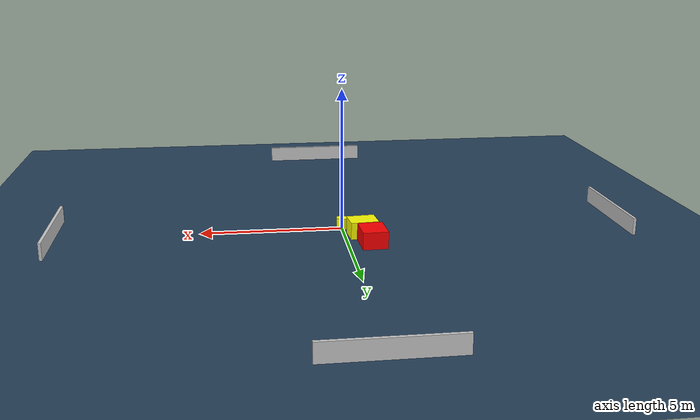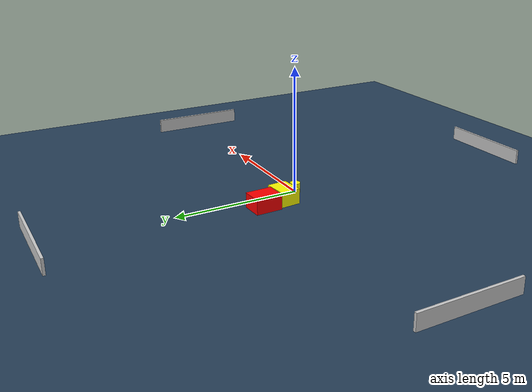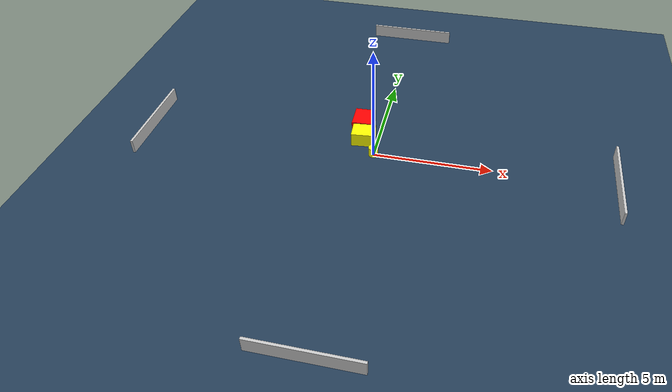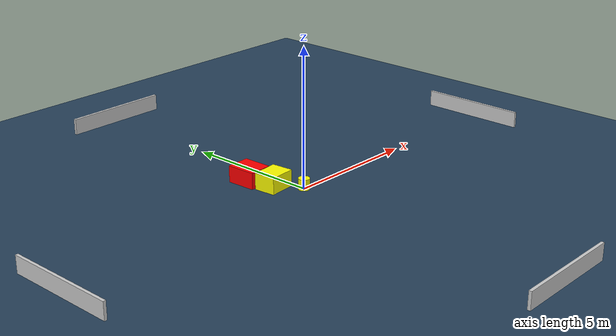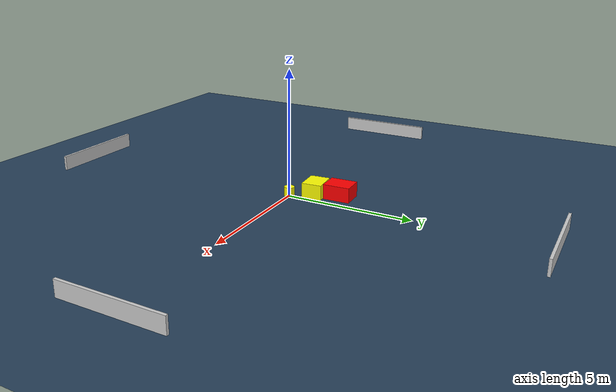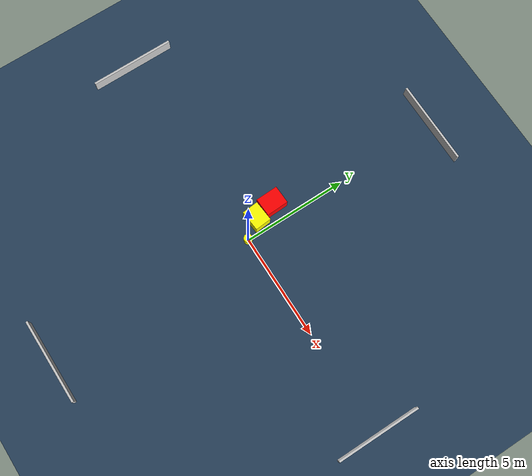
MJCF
<?xml version="1.0" ?>
<mujoco model="generated_environment">
  <option timestep="0.01" integrator="RK4" cone="elliptic"/>
  <default>
    <geom density="1"/>
  </default>
  <asset>
    <texture builtin="gradient" height="3072" name="skybox" rgb1="0.3 0.5 0.7" rgb2="0 0 0" type="skybox" width="512"/>
    <texture builtin="checker" height="300" name="groundplane" rgb1="0.2 0.3 0.4" rgb2="0.1 0.2 0.3" type="2d" width="300"/>
    <material name="groundplane" reflectance="0.2" texrepeat="5 5" texture="groundplane"/>
  </asset>
  <worldbody>
    <light dir="0 0 -1" directional="true" pos="0 0 1.5"/>
    <geom condim="3" friction="0.5 0.005 0.001" material="groundplane" name="floor" pos="0 0 0" size="0 0 0.05" type="plane"/>
    <body name="walls">
      <geom name="wall_1" condim="4" pos="-10.0 0.0 0.3" rgba="0.800000011920929 0.800000011920929 0.800000011920929 1.0" size="0.05 2.0 0.3" type="box"/>
      <geom name="wall_2" condim="4" pos="10.0 0.0 0.3" rgba="0.800000011920929 0.800000011920929 0.800000011920929 1.0" size="0.05 2.0 0.3" type="box"/>
      <geom name="wall_3" condim="4" pos="0.0 -10.0 0.3" rgba="0.800000011920929 0.800000011920929 0.800000011920929 1.0" size="2.0 0.05 0.3" type="box"/>
      <geom name="wall_4" condim="4" pos="0.0 10.0 0.3" rgba="0.800000011920929 0.800000011920929 0.800000011920929 1.0" size="2.0 0.05 0.3" type="box"/>
    </body>
    <body name="robot">
      <joint name="joint_x" type="slide" pos="0 0 0" axis="1 0 0"/>
      <joint name="joint_y" type="slide" pos="0 0 0" axis="0 1 0"/>
      <geom name="robot" type="cylinder" pos="0.0 0.0 0.2" size="0.2 0.2 0.0" mass="5.0" friction="1.0 0.005 0.0001" condim="4" rgba="1.0 1.0 0.0 1.0"/>
    </body>
    <body name="obstacle_1_movable">
      <geom name="obstacle_1_movable" condim="4" pos="-0.613420531625697 0.8446608759312928 0.3" euler="0 0 274.9209376491138" friction="0.0 0.005 0.001" rgba="1.0 1.0 0.0 1.0" size="0.39238242912279514 0.48967071853959315 0.3" type="box" mass="0.1"/>
      <joint type="free"/>
    </body>
    <body name="obstacle_2_static">
      <geom name="obstacle_2_static" condim="4" pos="-0.8199231849496869 1.7945847288447663 0.3" euler="0 0 272.34293163816795" friction="0.0 0.005 0.001" rgba="1.0 0.0 0.0 1.0" size="0.531323853073498 0.4327927410994953 0.3" type="box"/>
    </body>
  </worldbody>
  <actuator>
    <motor name="actuator_x" joint="joint_x" gear="1" ctrlrange="-1 1"/>
    <motor name="actuator_y" joint="joint_y" gear="1" ctrlrange="-1 1"/>
  </actuator>
</mujoco>
